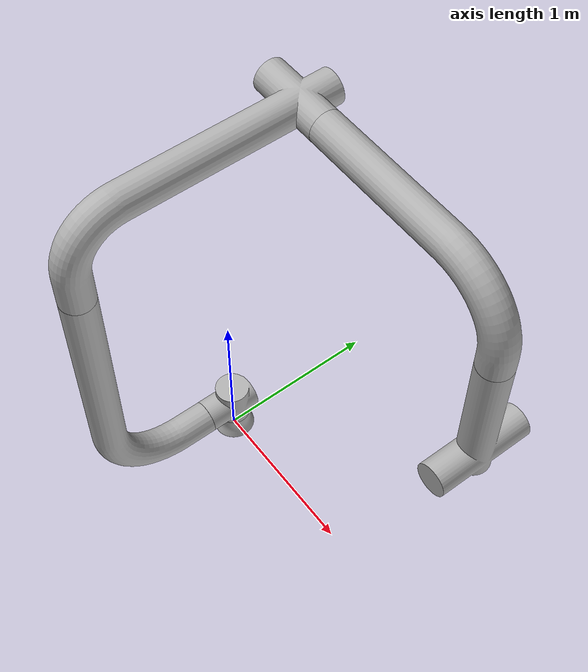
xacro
<?xml version="1.0"?>
<robot xmlns:xacro="http://www.ros.org/wiki/xacro" name="FiveDoFBot">
    <xacro:arg name="initial_positions_file" default="initial_positions.yaml" />

    <!-- Import FiveDoFBot urdf file -->
    <xacro:include filename="$(find FiveDoFBot_description)/urdf/FiveDoFBot.xacro" />

    <!-- Import control_xacro -->
    <xacro:include filename="FiveDoFBot.ros2_control.xacro" />

    <xacro:FiveDoFBot_ros2_control name="FakeSystem" initial_positions_file="$(arg initial_positions_file)"/>

</robot>

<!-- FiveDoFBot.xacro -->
<robot name="FiveDoFBot" xmlns:xacro="http://www.ros.org/wiki/xacro">

<xacro:include filename="$(find FiveDoFBot_description)/urdf/materials.xacro" />
<xacro:include filename="$(find FiveDoFBot_description)/urdf/ros2_control.xacro" />
<xacro:include filename="$(find FiveDoFBot_description)/urdf/FiveDoFBot.trans" />
<xacro:include filename="$(find FiveDoFBot_description)/urdf/FiveDoFBot.gazebo" />

<link name="world">

</link>

<joint name="world_joint" type="fixed">
  <origin xyz="0.0 0.0 0.0" rpy="0.0 0.0 0.0"/>
  <parent link="world"/>
  <child link="base_link"/>
</joint>

<link name="base_link">
  <inertial>
    <origin xyz="8.896038694165951e-15 5.4079262578516416e-17 0.06318747531006766" rpy="0 0 0"/>
    <mass value="337.97068701320615"/>
    <inertia ixx="9.720532" iyy="9.720532" izz="18.322647" ixy="0.0" iyz="0.0" ixz="-0.0"/>
  </inertial>
  <visual>
    <origin xyz="0 0 0" rpy="0 0 0"/>
    <geometry>
      <mesh filename="file://$(find FiveDoFBot_description)/meshes/base_link.stl" scale="0.001 0.001 0.001"/>
    </geometry>
    <material name="silver"/>
  </visual>
  <collision>
    <origin xyz="0 0 0" rpy="0 0 0"/>
    <geometry>
      <mesh filename="file://$(find FiveDoFBot_description)/meshes/base_link.stl" scale="0.001 0.001 0.001"/>
    </geometry>
  </collision>
</link>

<link name="link_1_1">
  <inertial>
    <origin xyz="-0.1417405539410012 0.0 0.17249256575594651" rpy="0 0 0"/>
    <mass value="189.6592990132626"/>
    <inertia ixx="2.061043" iyy="5.415233" izz="4.980538" ixy="-0.0" iyz="-0.0" ixz="0.833113"/>
  </inertial>
  <visual>
    <origin xyz="-0.0 -0.0 -0.125" rpy="0 0 0"/>
    <geometry>
      <mesh filename="file://$(find FiveDoFBot_description)/meshes/link_1_1.stl" scale="0.001 0.001 0.001"/>
    </geometry>
    <material name="silver"/>
  </visual>
  <collision>
    <origin xyz="-0.0 -0.0 -0.125" rpy="0 0 0"/>
    <geometry>
      <mesh filename="file://$(find FiveDoFBot_description)/meshes/link_1_1.stl" scale="0.001 0.001 0.001"/>
    </geometry>
  </collision>
</link>

<link name="link_2_1">
  <inertial>
    <origin xyz="-0.04609333052405859 -0.10879465920316081 0.05396631184064804" rpy="0 0 0"/>
    <mass value="33.61327810481112"/>
    <inertia ixx="0.411858" iyy="0.46635" izz="0.351159" ixy="-0.003982" iyz="0.004663" ixz="0.191664"/>
  </inertial>
  <visual>
    <origin xyz="0.0 -0.111365 -0.42" rpy="0 0 0"/>
    <geometry>
      <mesh filename="file://$(find FiveDoFBot_description)/meshes/link_2_1.stl" scale="0.001 0.001 0.001"/>
    </geometry>
    <material name="silver"/>
  </visual>
  <collision>
    <origin xyz="0.0 -0.111365 -0.42" rpy="0 0 0"/>
    <geometry>
      <mesh filename="file://$(find FiveDoFBot_description)/meshes/link_2_1.stl" scale="0.001 0.001 0.001"/>
    </geometry>
  </collision>
</link>

<link name="link_3_1">
  <inertial>
    <origin xyz="0.1510904289831177 0.06851603448921259 0.09332221380418726" rpy="0 0 0"/>
    <mass value="38.07573822019958"/>
    <inertia ixx="0.2897" iyy="0.831809" izz="0.636154" ixy="-0.008537" iyz="-0.005273" ixz="-0.345983"/>
  </inertial>
  <visual>
    <origin xyz="0.211249 0.07 -0.667331" rpy="0 0 0"/>
    <geometry>
      <mesh filename="file://$(find FiveDoFBot_description)/meshes/link_3_1.stl" scale="0.001 0.001 0.001"/>
    </geometry>
    <material name="silver"/>
  </visual>
  <collision>
    <origin xyz="0.211249 0.07 -0.667331" rpy="0 0 0"/>
    <geometry>
      <mesh filename="file://$(find FiveDoFBot_description)/meshes/link_3_1.stl" scale="0.001 0.001 0.001"/>
    </geometry>
  </collision>
</link>

<link name="link_4_1">
  <inertial>
    <origin xyz="0.03682095202626473 -0.045024259363412686 -0.044794372452696685" rpy="0 0 0"/>
    <mass value="9.264442315245539"/>
    <inertia ixx="0.040272" iyy="0.027358" izz="0.037444" ixy="9e-06" iyz="-1.2e-05" ixz="0.007168"/>
  </inertial>
  <visual>
    <origin xyz="-0.129069 -0.045 -0.877531" rpy="0 0 0"/>
    <geometry>
      <mesh filename="file://$(find FiveDoFBot_description)/meshes/link_4_1.stl" scale="0.001 0.001 0.001"/>
    </geometry>
    <material name="silver"/>
  </visual>
  <collision>
    <origin xyz="-0.129069 -0.045 -0.877531" rpy="0 0 0"/>
    <geometry>
      <mesh filename="file://$(find FiveDoFBot_description)/meshes/link_4_1.stl" scale="0.001 0.001 0.001"/>
    </geometry>
  </collision>
</link>

<link name="link_5_1">
  <inertial>
    <origin xyz="0.03485872272858703 3.453548422916288e-08 -0.04240701140130454" rpy="0 0 0"/>
    <mass value="4.849971708064146"/>
    <inertia ixx="0.008247" iyy="0.007259" izz="0.008721" ixy="0.0" iyz="0.0" ixz="-0.001201"/>
  </inertial>
  <visual>
    <origin xyz="-0.202034 0.000476 -0.788766" rpy="0 0 0"/>
    <geometry>
      <mesh filename="file://$(find FiveDoFBot_description)/meshes/link_5_1.stl" scale="0.001 0.001 0.001"/>
    </geometry>
    <material name="silver"/>
  </visual>
  <collision>
    <origin xyz="-0.202034 0.000476 -0.788766" rpy="0 0 0"/>
    <geometry>
      <mesh filename="file://$(find FiveDoFBot_description)/meshes/link_5_1.stl" scale="0.001 0.001 0.001"/>
    </geometry>
  </collision>
</link>

<joint name="joint_1" type="continuous">
  <origin xyz="0.0 0.0 0.125" rpy="0 0 0"/>
  <parent link="base_link"/>
  <child link="link_1_1"/>
  <axis xyz="0.0 0.0 1.0"/>
</joint>

<joint name="joint_2" type="revolute">
  <origin xyz="-0.0 0.111365 0.295" rpy="0 0 0"/>
  <parent link="link_1_1"/>
  <child link="link_2_1"/>
  <axis xyz="-0.0 1.0 0.0"/>
  <limit upper="2.094395" lower="-0.174533" effort="100" velocity="100"/>
</joint>

<joint name="joint_3" type="revolute">
  <origin xyz="-0.211249 -0.181365 0.247331" rpy="0 0 0"/>
  <parent link="link_2_1"/>
  <child link="link_3_1"/>
  <axis xyz="0.0 -1.0 0.0"/>
  <limit upper="4.363323" lower="-0.872665" effort="100" velocity="100"/>
</joint>

<joint name="joint_4" type="revolute">
  <origin xyz="0.340318 0.115 0.2102" rpy="0 0 0"/>
  <parent link="link_3_1"/>
  <child link="link_4_1"/>
  <axis xyz="0.0 1.0 0.0"/>
  <limit upper="0.610865" lower="-3.403392" effort="100" velocity="100"/>
</joint>

<joint name="joint_5" type="continuous">
  <origin xyz="0.072965 -0.045476 -0.088765" rpy="0 0 0"/>
  <parent link="link_4_1"/>
  <child link="link_5_1"/>
  <axis xyz="0.635005 0.0 -0.772508"/>
</joint>

</robot>

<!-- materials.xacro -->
<robot name="FiveDoFBot" xmlns:xacro="http://www.ros.org/wiki/xacro" >

<material name="silver">
  <color rgba="0.700 0.700 0.700 1.000"/>
</material>

</robot>

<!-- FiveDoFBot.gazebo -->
<robot name="FiveDoFBot" xmlns:xacro="http://www.ros.org/wiki/xacro" >

<xacro:property name="Silver" value="Gazebo/Silver" />
<xacro:property name="Red" value="Gazebo/Red" />
<xacro:property name="Blue" value="Gazebo/Blue" />
<xacro:property name="White" value="Gazebo/White" />
<xacro:property name="Green" value="Gazebo/Green" />
<xacro:property name="Yellow" value="Gazebo/Yellow" />
<xacro:property name="Orange" value="Gazebo/Orange" />

<gazebo reference="base_link">
  <material>${White}</material>
  <mu1>0.2</mu1>
  <mu2>0.2</mu2>
  <self_collide>true</self_collide>
  <gravity>true</gravity>
</gazebo>

<gazebo reference="link_1_1">
  <material>${Red}</material>
  <mu1>0.2</mu1>
  <mu2>0.2</mu2>
  <self_collide>true</self_collide>
</gazebo>

<gazebo reference="link_2_1">
  <material>${Green}</material>
  <mu1>0.2</mu1>
  <mu2>0.2</mu2>
  <self_collide>true</self_collide>
</gazebo>

<gazebo reference="link_3_1">
  <material>${Blue}</material>
  <mu1>0.2</mu1>
  <mu2>0.2</mu2>
  <self_collide>true</self_collide>
</gazebo>

<gazebo reference="link_4_1">
  <material>${Yellow}</material>
  <mu1>0.2</mu1>
  <mu2>0.2</mu2>
  <self_collide>true</self_collide>
</gazebo>

<gazebo reference="link_5_1">
  <material>${Orange}</material>
  <mu1>0.2</mu1>
  <mu2>0.2</mu2>
  <self_collide>true</self_collide>
</gazebo>

</robot>
